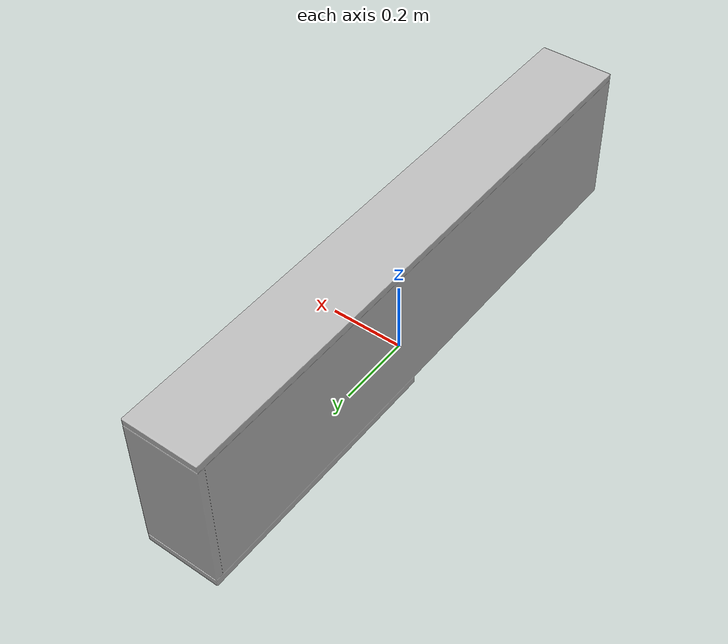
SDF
<?xml version='1.0'?>
<sdf version='1.4'>
  <model name='207'>
    <pose>0 0 0 0 0 0</pose>
    <static>true</static>
    <link name='link'>
      <collision name='collision'>
        <pose>0 0 0 0 0 0</pose>
        <geometry>
          <box>
            <size>0.2 1.55 2</size>
          </box>
        </geometry>
      </collision>
      <visual name='visual'>
        <pose>0 0 0 0 0 0</pose>
        <geometry>
          <mesh><uri>model://207/207.dae</uri></mesh>
        </geometry>
      </visual>
    </link>
  </model>
</sdf>
